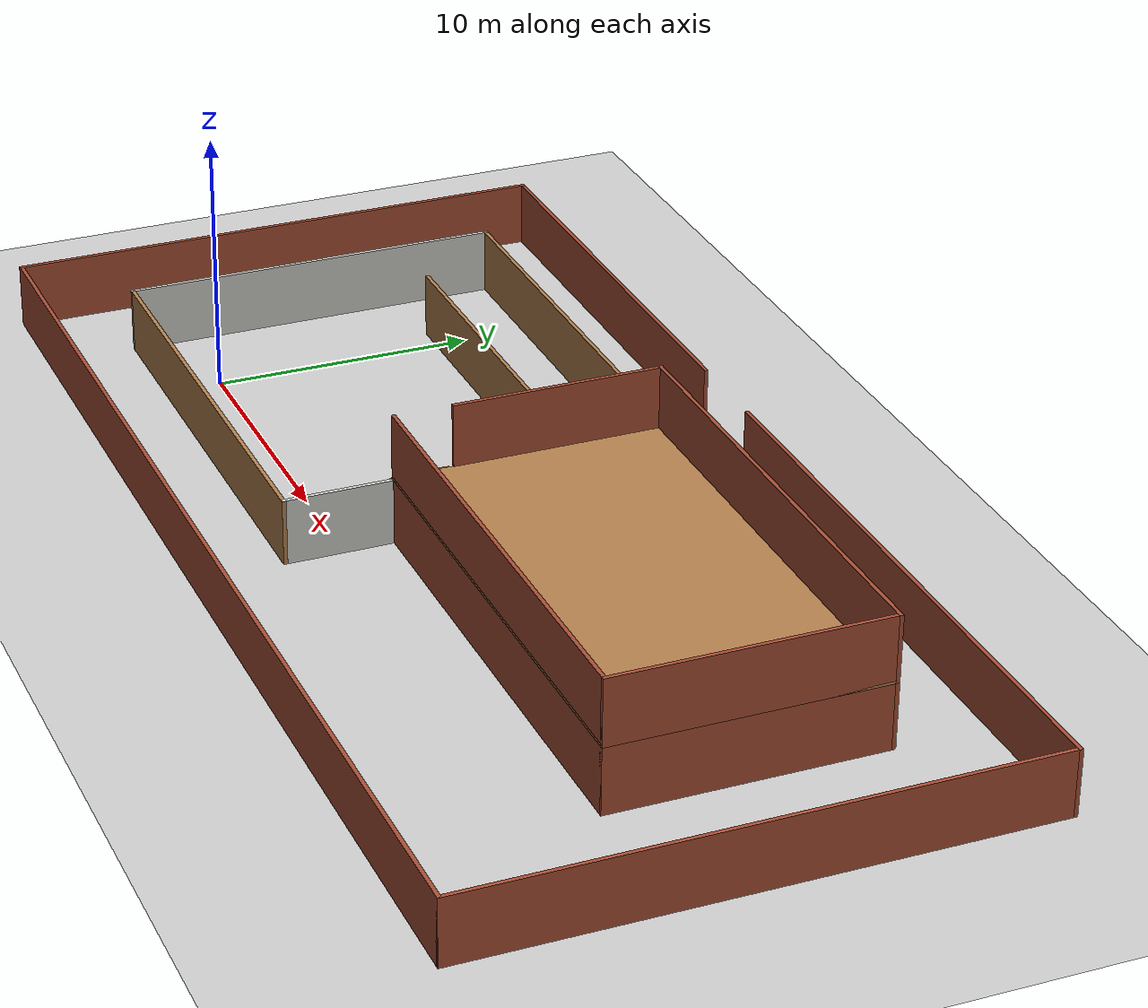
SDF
<?xml version="1.0" ?>
<sdf version="1.7">
  <world name="test_world">
    <include>
      <uri>model://ground_plane</uri>
    </include>

    <include>
      <uri>model://sun</uri>
    </include>

    <include>
      <uri>model://test_world</uri>
      <pose>15.0 5.0 0 0 -0 0</pose>
    </include>
  </world>
</sdf>

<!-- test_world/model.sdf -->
<sdf version='1.7'>
  <model name='test_world'>
    <pose>15.0 5.0 0 0 -0 0</pose>
    <link name='Floor_0'>
      <pose>8.0014 2.02127 2.5 0 -0 0</pose>
      <visual name='Floor_0_Visual_0'>
        <pose>0 -5.06045 0.05 0 -0 0</pose>
        <geometry>
          <box>
            <size>18.5 0.1291 0.1</size>
          </box>
        </geometry>
        <material>
          <script>
            <uri>file://media/materials/scripts/gazebo.material</uri>
            <name>Gazebo/Wood</name>
          </script>
          <ambient>1 1 1 1</ambient>
        </material>
        <meta>
          <layer>1</layer>
        </meta>
      </visual>
      <collision name='Floor_0_Collision_0'>
        <geometry>
          <box>
            <size>18.5 0.1291 0.1</size>
          </box>
        </geometry>
        <pose>0 -5.06045 0.05 0 -0 0</pose>
      </collision>
      <visual name='Floor_0_Visual_1'>
        <pose>0.03965 -4.47833 0.05 0 -0 0</pose>
        <geometry>
          <box>
            <size>18.4207 1.03513 0.1</size>
          </box>
        </geometry>
        <material>
          <script>
            <uri>file://media/materials/scripts/gazebo.material</uri>
            <name>Gazebo/Wood</name>
          </script>
          <ambient>1 1 1 1</ambient>
        </material>
        <meta>
          <layer>1</layer>
        </meta>
      </visual>
      <collision name='Floor_0_Collision_1'>
        <geometry>
          <box>
            <size>18.4207 1.03513 0.1</size>
          </box>
        </geometry>
        <pose>0.03965 -4.47833 0.05 0 -0 0</pose>
      </collision>
      <visual name='Floor_0_Visual_2'>
        <pose>0.048992 0.582117 0.05 0 -0 0</pose>
        <geometry>
          <box>
            <size>18.402 9.08577 0.1</size>
          </box>
        </geometry>
        <material>
          <script>
            <uri>file://media/materials/scripts/gazebo.material</uri>
            <name>Gazebo/Wood</name>
          </script>
          <ambient>1 1 1 1</ambient>
        </material>
        <meta>
          <layer>1</layer>
        </meta>
      </visual>
      <collision name='Floor_0_Collision_2'>
        <geometry>
          <box>
            <size>18.402 9.08577 0.1</size>
          </box>
        </geometry>
        <pose>0.048992 0.582117 0.05 0 -0 0</pose>
      </collision>
    </link>
    <link name='Stairs_0'>
      <visual name='Stairs_0_Visual_0'>
        <pose>-4.55264 -2.47463 0.083333 0 -0 1.5708</pose>
        <geometry>
          <box>
            <size>1 0.233333 0.166667</size>
          </box>
        </geometry>
        <material>
          <script>
            <uri>file://media/materials/scripts/gazebo.material</uri>
            <name>Gazebo/Wood</name>
          </script>
          <ambient>1 1 1 1</ambient>
        </material>
        <meta>
          <layer>0</layer>
        </meta>
      </visual>
      <collision name='Stairs_0_Collision_0'>
        <geometry>
          <box>
            <size>1 0.233333 0.166667</size>
          </box>
        </geometry>
        <pose>-4.55264 -2.47463 0.083333 0 -0 1.5708</pose>
      </collision>
      <visual name='Stairs_0_Visual_1'>
        <pose>-4.3193 -2.47463 0.25 0 -0 1.5708</pose>
        <geometry>
          <box>
            <size>1 0.233333 0.166667</size>
          </box>
        </geometry>
        <material>
          <script>
            <uri>file://media/materials/scripts/gazebo.material</uri>
            <name>Gazebo/Wood</name>
          </script>
          <ambient>1 1 1 1</ambient>
        </material>
        <meta>
          <layer>0</layer>
        </meta>
      </visual>
      <collision name='Stairs_0_Collision_1'>
        <geometry>
          <box>
            <size>1 0.233333 0.166667</size>
          </box>
        </geometry>
        <pose>-4.3193 -2.47463 0.25 0 -0 1.5708</pose>
      </collision>
      <visual name='Stairs_0_Visual_2'>
        <pose>-4.08597 -2.47463 0.416667 0 -0 1.5708</pose>
        <geometry>
          <box>
            <size>1 0.233333 0.166667</size>
          </box>
        </geometry>
        <material>
          <script>
            <uri>file://media/materials/scripts/gazebo.material</uri>
            <name>Gazebo/Wood</name>
          </script>
          <ambient>1 1 1 1</ambient>
        </material>
        <meta>
          <layer>0</layer>
        </meta>
      </visual>
      <collision name='Stairs_0_Collision_2'>
        <geometry>
          <box>
            <size>1 0.233333 0.166667</size>
          </box>
        </geometry>
        <pose>-4.08597 -2.47463 0.416667 0 -0 1.5708</pose>
      </collision>
      <visual name='Stairs_0_Visual_3'>
        <pose>-3.85264 -2.47463 0.583333 0 -0 1.5708</pose>
        <geometry>
          <box>
            <size>1 0.233333 0.166667</size>
          </box>
        </geometry>
        <material>
          <script>
            <uri>file://media/materials/scripts/gazebo.material</uri>
            <name>Gazebo/Wood</name>
          </script>
          <ambient>1 1 1 1</ambient>
        </material>
        <meta>
          <layer>0</layer>
        </meta>
      </visual>
      <collision name='Stairs_0_Collision_3'>
        <geometry>
          <box>
            <size>1 0.233333 0.166667</size>
          </box>
        </geometry>
        <pose>-3.85264 -2.47463 0.583333 0 -0 1.5708</pose>
      </collision>
      <visual name='Stairs_0_Visual_4'>
        <pose>-3.6193 -2.47463 0.75 0 -0 1.5708</pose>
        <geometry>
          <box>
            <size>1 0.233333 0.166667</size>
          </box>
        </geometry>
        <material>
          <script>
            <uri>file://media/materials/scripts/gazebo.material</uri>
            <name>Gazebo/Wood</name>
          </script>
          <ambient>1 1 1 1</ambient>
        </material>
        <meta>
          <layer>0</layer>
        </meta>
      </visual>
      <collision name='Stairs_0_Collision_4'>
        <geometry>
          <box>
            <size>1 0.233333 0.166667</size>
          </box>
        </geometry>
        <pose>-3.6193 -2.47463 0.75 0 -0 1.5708</pose>
      </collision>
      <visual name='Stairs_0_Visual_5'>
        <pose>-3.38597 -2.47463 0.916667 0 -0 1.5708</pose>
        <geometry>
          <box>
            <size>1 0.233333 0.166667</size>
          </box>
        </geometry>
        <material>
          <script>
            <uri>file://media/materials/scripts/gazebo.material</uri>
            <name>Gazebo/Wood</name>
          </script>
          <ambient>1 1 1 1</ambient>
        </material>
        <meta>
          <layer>0</layer>
        </meta>
      </visual>
      <collision name='Stairs_0_Collision_5'>
        <geometry>
          <box>
            <size>1 0.233333 0.166667</size>
          </box>
        </geometry>
        <pose>-3.38597 -2.47463 0.916667 0 -0 1.5708</pose>
      </collision>
      <visual name='Stairs_0_Visual_6'>
        <pose>-3.15264 -2.47463 1.08333 0 -0 1.5708</pose>
        <geometry>
          <box>
            <size>1 0.233333 0.166667</size>
          </box>
        </geometry>
        <material>
          <script>
            <uri>file://media/materials/scripts/gazebo.material</uri>
            <name>Gazebo/Wood</name>
          </script>
          <ambient>1 1 1 1</ambient>
        </material>
        <meta>
          <layer>0</layer>
        </meta>
      </visual>
      <collision name='Stairs_0_Collision_6'>
        <geometry>
          <box>
            <size>1 0.233333 0.166667</size>
          </box>
        </geometry>
        <pose>-3.15264 -2.47463 1.08333 0 -0 1.5708</pose>
      </collision>
      <visual name='Stairs_0_Visual_7'>
        <pose>-2.9193 -2.47463 1.25 0 -0 1.5708</pose>
        <geometry>
          <box>
            <size>1 0.233333 0.166667</size>
          </box>
        </geometry>
        <material>
          <script>
            <uri>file://media/materials/scripts/gazebo.material</uri>
            <name>Gazebo/Wood</name>
          </script>
          <ambient>1 1 1 1</ambient>
        </material>
        <meta>
          <layer>0</layer>
        </meta>
      </visual>
      <collision name='Stairs_0_Collision_7'>
        <geometry>
          <box>
            <size>1 0.233333 0.166667</size>
          </box>
        </geometry>
        <pose>-2.9193 -2.47463 1.25 0 -0 1.5708</pose>
      </collision>
      <visual name='Stairs_0_Visual_8'>
        <pose>-2.68597 -2.47463 1.41667 0 -0 1.5708</pose>
        <geometry>
          <box>
            <size>1 0.233333 0.166667</size>
          </box>
        </geometry>
        <material>
          <script>
            <uri>file://media/materials/scripts/gazebo.material</uri>
            <name>Gazebo/Wood</name>
          </script>
          <ambient>1 1 1 1</ambient>
        </material>
        <meta>
          <layer>0</layer>
        </meta>
      </visual>
      <collision name='Stairs_0_Collision_8'>
        <geometry>
          <box>
            <size>1 0.233333 0.166667</size>
          </box>
        </geometry>
        <pose>-2.68597 -2.47463 1.41667 0 -0 1.5708</pose>
      </collision>
      <visual name='Stairs_0_Visual_9'>
        <pose>-2.45264 -2.47463 1.58333 0 -0 1.5708</pose>
        <geometry>
          <box>
            <size>1 0.233333 0.166667</size>
          </box>
        </geometry>
        <material>
          <script>
            <uri>file://media/materials/scripts/gazebo.material</uri>
            <name>Gazebo/Wood</name>
          </script>
          <ambient>1 1 1 1</ambient>
        </material>
        <meta>
          <layer>0</layer>
        </meta>
      </visual>
      <collision name='Stairs_0_Collision_9'>
        <geometry>
          <box>
            <size>1 0.233333 0.166667</size>
          </box>
        </geometry>
        <pose>-2.45264 -2.47463 1.58333 0 -0 1.5708</pose>
      </collision>
      <visual name='Stairs_0_Visual_10'>
        <pose>-2.2193 -2.47463 1.75 0 -0 1.5708</pose>
        <geometry>
          <box>
            <size>1 0.233333 0.166667</size>
          </box>
        </geometry>
        <material>
          <script>
            <uri>file://media/materials/scripts/gazebo.material</uri>
            <name>Gazebo/Wood</name>
          </script>
          <ambient>1 1 1 1</ambient>
        </material>
        <meta>
          <layer>0</layer>
        </meta>
      </visual>
      <collision name='Stairs_0_Collision_10'>
        <geometry>
          <box>
            <size>1 0.233333 0.166667</size>
          </box>
        </geometry>
        <pose>-2.2193 -2.47463 1.75 0 -0 1.5708</pose>
      </collision>
      <visual name='Stairs_0_Visual_11'>
        <pose>-1.98597 -2.47463 1.91667 0 -0 1.5708</pose>
        <geometry>
          <box>
            <size>1 0.233333 0.166667</size>
          </box>
        </geometry>
        <material>
          <script>
            <uri>file://media/materials/scripts/gazebo.material</uri>
            <name>Gazebo/Wood</name>
          </script>
          <ambient>1 1 1 1</ambient>
        </material>
        <meta>
          <layer>0</layer>
        </meta>
      </visual>
      <collision name='Stairs_0_Collision_11'>
        <geometry>
          <box>
            <size>1 0.233333 0.166667</size>
          </box>
        </geometry>
        <pose>-1.98597 -2.47463 1.91667 0 -0 1.5708</pose>
      </collision>
      <visual name='Stairs_0_Visual_12'>
        <pose>-1.75263 -2.47463 2.08333 0 -0 1.5708</pose>
        <geometry>
          <box>
            <size>1 0.233333 0.166667</size>
          </box>
        </geometry>
        <material>
          <script>
            <uri>file://media/materials/scripts/gazebo.material</uri>
            <name>Gazebo/Wood</name>
          </script>
          <ambient>1 1 1 1</ambient>
        </material>
        <meta>
          <layer>0</layer>
        </meta>
      </visual>
      <collision name='Stairs_0_Collision_12'>
        <geometry>
          <box>
            <size>1 0.233333 0.166667</size>
          </box>
        </geometry>
        <pose>-1.75263 -2.47463 2.08333 0 -0 1.5708</pose>
      </collision>
      <visual name='Stairs_0_Visual_13'>
        <pose>-1.5193 -2.47463 2.25 0 -0 1.5708</pose>
        <geometry>
          <box>
            <size>1 0.233333 0.166667</size>
          </box>
        </geometry>
        <material>
          <script>
            <uri>file://media/materials/scripts/gazebo.material</uri>
            <name>Gazebo/Wood</name>
          </script>
          <ambient>1 1 1 1</ambient>
        </material>
        <meta>
          <layer>0</layer>
        </meta>
      </visual>
      <collision name='Stairs_0_Collision_13'>
        <geometry>
          <box>
            <size>1 0.233333 0.166667</size>
          </box>
        </geometry>
        <pose>-1.5193 -2.47463 2.25 0 -0 1.5708</pose>
      </collision>
      <visual name='Stairs_0_Visual_14'>
        <pose>-1.28597 -2.47463 2.41667 0 -0 1.5708</pose>
        <geometry>
          <box>
            <size>1 0.233333 0.166667</size>
          </box>
        </geometry>
        <material>
          <script>
            <uri>file://media/materials/scripts/gazebo.material</uri>
            <name>Gazebo/Wood</name>
          </script>
          <ambient>1 1 1 1</ambient>
        </material>
        <meta>
          <layer>0</layer>
        </meta>
      </visual>
      <collision name='Stairs_0_Collision_14'>
        <geometry>
          <box>
            <size>1 0.233333 0.166667</size>
          </box>
        </geometry>
        <pose>-1.28597 -2.47463 2.41667 0 -0 1.5708</pose>
      </collision>
    </link>
    <link name='Stairs_1'>
      <visual name='Stairs_1_Visual_0'>
        <pose>-4.55966 -1.43949 0.083333 0 -0 1.5708</pose>
        <geometry>
          <box>
            <size>1 0.235107 0.166667</size>
          </box>
        </geometry>
        <material>
          <script>
            <uri>file://media/materials/scripts/gazebo.material</uri>
            <name>Gazebo/Wood</name>
          </script>
          <ambient>1 1 1 1</ambient>
        </material>
        <meta>
          <layer>0</layer>
        </meta>
      </visual>
      <collision name='Stairs_1_Collision_0'>
        <geometry>
          <box>
            <size>1 0.235107 0.166667</size>
          </box>
        </geometry>
        <pose>-4.55966 -1.43949 0.083333 0 -0 1.5708</pose>
      </collision>
      <visual name='Stairs_1_Visual_1'>
        <pose>-4.32456 -1.43949 0.25 0 -0 1.5708</pose>
        <geometry>
          <box>
            <size>1 0.235107 0.166667</size>
          </box>
        </geometry>
        <material>
          <script>
            <uri>file://media/materials/scripts/gazebo.material</uri>
            <name>Gazebo/Wood</name>
          </script>
          <ambient>1 1 1 1</ambient>
        </material>
        <meta>
          <layer>0</layer>
        </meta>
      </visual>
      <collision name='Stairs_1_Collision_1'>
        <geometry>
          <box>
            <size>1 0.235107 0.166667</size>
          </box>
        </geometry>
        <pose>-4.32456 -1.43949 0.25 0 -0 1.5708</pose>
      </collision>
      <visual name='Stairs_1_Visual_2'>
        <pose>-4.08945 -1.43949 0.416667 0 -0 1.5708</pose>
        <geometry>
          <box>
            <size>1 0.235107 0.166667</size>
          </box>
        </geometry>
        <material>
          <script>
            <uri>file://media/materials/scripts/gazebo.material</uri>
            <name>Gazebo/Wood</name>
          </script>
          <ambient>1 1 1 1</ambient>
        </material>
        <meta>
          <layer>0</layer>
        </meta>
      </visual>
      <collision name='Stairs_1_Collision_2'>
        <geometry>
          <box>
            <size>1 0.235107 0.166667</size>
          </box>
        </geometry>
        <pose>-4.08945 -1.43949 0.416667 0 -0 1.5708</pose>
      </collision>
      <visual name='Stairs_1_Visual_3'>
        <pose>-3.85434 -1.43949 0.583333 0 -0 1.5708</pose>
        <geometry>
          <box>
            <size>1 0.235107 0.166667</size>
          </box>
        </geometry>
        <material>
          <script>
            <uri>file://media/materials/scripts/gazebo.material</uri>
            <name>Gazebo/Wood</name>
          </script>
          <ambient>1 1 1 1</ambient>
        </material>
        <meta>
          <layer>0</layer>
        </meta>
      </visual>
      <collision name='Stairs_1_Collision_3'>
        <geometry>
          <box>
            <size>1 0.235107 0.166667</size>
          </box>
        </geometry>
        <pose>-3.85434 -1.43949 0.583333 0 -0 1.5708</pose>
      </collision>
      <visual name='Stairs_1_Visual_4'>
        <pose>-3.61924 -1.43949 0.75 0 -0 1.5708</pose>
        <geometry>
          <box>
            <size>1 0.235107 0.166667</size>
          </box>
        </geometry>
        <material>
          <script>
            <uri>file://media/materials/scripts/gazebo.material</uri>
            <name>Gazebo/Wood</name>
          </script>
          <ambient>1 1 1 1</ambient>
        </material>
        <meta>
          <layer>0</layer>
        </meta>
      </visual>
      <collision name='Stairs_1_Collision_4'>
        <geometry>
          <box>
            <size>1 0.235107 0.166667</size>
          </box>
        </geometry>
        <pose>-3.61924 -1.43949 0.75 0 -0 1.5708</pose>
      </collision>
      <visual name='Stairs_1_Visual_5'>
        <pose>-3.38413 -1.43949 0.916667 0 -0 1.5708</pose>
        <geometry>
          <box>
            <size>1 0.235107 0.166667</size>
          </box>
        </geometry>
        <material>
          <script>
            <uri>file://media/materials/scripts/gazebo.material</uri>
            <name>Gazebo/Wood</name>
          </script>
          <ambient>1 1 1 1</ambient>
        </material>
        <meta>
          <layer>0</layer>
        </meta>
      </visual>
      <collision name='Stairs_1_Collision_5'>
        <geometry>
          <box>
            <size>1 0.235107 0.166667</size>
          </box>
        </geometry>
        <pose>-3.38413 -1.43949 0.916667 0 -0 1.5708</pose>
      </collision>
      <visual name='Stairs_1_Visual_6'>
        <pose>-3.14902 -1.43949 1.08333 0 -0 1.5708</pose>
        <geometry>
          <box>
            <size>1 0.235107 0.166667</size>
          </box>
        </geometry>
        <material>
          <script>
            <uri>file://media/materials/scripts/gazebo.material</uri>
            <name>Gazebo/Wood</name>
          </script>
          <ambient>1 1 1 1</ambient>
        </material>
        <meta>
          <layer>0</layer>
        </meta>
      </visual>
      <collision name='Stairs_1_Collision_6'>
        <geometry>
          <box>
            <size>1 0.235107 0.166667</size>
          </box>
        </geometry>
        <pose>-3.14902 -1.43949 1.08333 0 -0 1.5708</pose>
      </collision>
      <visual name='Stairs_1_Visual_7'>
        <pose>-2.91392 -1.43949 1.25 0 -0 1.5708</pose>
        <geometry>
          <box>
            <size>1 0.235107 0.166667</size>
          </box>
        </geometry>
        <material>
          <script>
            <uri>file://media/materials/scripts/gazebo.material</uri>
            <name>Gazebo/Wood</name>
          </script>
          <ambient>1 1 1 1</ambient>
        </material>
        <meta>
          <layer>0</layer>
        </meta>
      </visual>
      <collision name='Stairs_1_Collision_7'>
        <geometry>
          <box>
            <size>1 0.235107 0.166667</size>
          </box>
        </geometry>
        <pose>-2.91392 -1.43949 1.25 0 -0 1.5708</pose>
      </collision>
      <visual name='Stairs_1_Visual_8'>
        <pose>-2.67881 -1.43949 1.41667 0 -0 1.5708</pose>
        <geometry>
          <box>
            <size>1 0.235107 0.166667</size>
          </box>
        </geometry>
        <material>
          <script>
            <uri>file://media/materials/scripts/gazebo.material</uri>
            <name>Gazebo/Wood</name>
          </script>
          <ambient>1 1 1 1</ambient>
        </material>
        <meta>
          <layer>0</layer>
        </meta>
      </visual>
      <collision name='Stairs_1_Collision_8'>
        <geometry>
          <box>
            <size>1 0.235107 0.166667</size>
          </box>
        </geometry>
        <pose>-2.67881 -1.43949 1.41667 0 -0 1.5708</pose>
      </collision>
      <visual name='Stairs_1_Visual_9'>
        <pose>-2.44371 -1.43949 1.58333 0 -0 1.5708</pose>
        <geometry>
          <box>
            <size>1 0.235107 0.166667</size>
          </box>
        </geometry>
        <material>
          <script>
            <uri>file://media/materials/scripts/gazebo.material</uri>
            <name>Gazebo/Wood</name>
          </script>
          <ambient>1 1 1 1</ambient>
        </material>
        <meta>
          <layer>0</layer>
        </meta>
      </visual>
      <collision name='Stairs_1_Collision_9'>
        <geometry>
          <box>
            <size>1 0.235107 0.166667</size>
          </box>
        </geometry>
        <pose>-2.44371 -1.43949 1.58333 0 -0 1.5708</pose>
      </collision>
      <visual name='Stairs_1_Visual_10'>
        <pose>-2.2086 -1.43949 1.75 0 -0 1.5708</pose>
        <geometry>
          <box>
            <size>1 0.235107 0.166667</size>
          </box>
        </geometry>
        <material>
          <script>
            <uri>file://media/materials/scripts/gazebo.material</uri>
            <name>Gazebo/Wood</name>
          </script>
          <ambient>1 1 1 1</ambient>
        </material>
        <meta>
          <layer>0</layer>
        </meta>
      </visual>
      <collision name='Stairs_1_Collision_10'>
        <geometry>
          <box>
            <size>1 0.235107 0.166667</size>
          </box>
        </geometry>
        <pose>-2.2086 -1.43949 1.75 0 -0 1.5708</pose>
      </collision>
      <visual name='Stairs_1_Visual_11'>
        <pose>-1.97349 -1.43949 1.91667 0 -0 1.5708</pose>
        <geometry>
          <box>
            <size>1 0.235107 0.166667</size>
          </box>
        </geometry>
        <material>
          <script>
            <uri>file://media/materials/scripts/gazebo.material</uri>
            <name>Gazebo/Wood</name>
          </script>
          <ambient>1 1 1 1</ambient>
        </material>
        <meta>
          <layer>0</layer>
        </meta>
      </visual>
      <collision name='Stairs_1_Collision_11'>
        <geometry>
          <box>
            <size>1 0.235107 0.166667</size>
          </box>
        </geometry>
        <pose>-1.97349 -1.43949 1.91667 0 -0 1.5708</pose>
      </collision>
      <visual name='Stairs_1_Visual_12'>
        <pose>-1.73839 -1.43949 2.08333 0 -0 1.5708</pose>
        <geometry>
          <box>
            <size>1 0.235107 0.166667</size>
          </box>
        </geometry>
        <material>
          <script>
            <uri>file://media/materials/scripts/gazebo.material</uri>
            <name>Gazebo/Wood</name>
          </script>
          <ambient>1 1 1 1</ambient>
        </material>
        <meta>
          <layer>0</layer>
        </meta>
      </visual>
      <collision name='Stairs_1_Collision_12'>
        <geometry>
          <box>
            <size>1 0.235107 0.166667</size>
          </box>
        </geometry>
        <pose>-1.73839 -1.43949 2.08333 0 -0 1.5708</pose>
      </collision>
      <visual name='Stairs_1_Visual_13'>
        <pose>-1.50328 -1.43949 2.25 0 -0 1.5708</pose>
        <geometry>
          <box>
            <size>1 0.235107 0.166667</size>
          </box>
        </geometry>
        <material>
          <script>
            <uri>file://media/materials/scripts/gazebo.material</uri>
            <name>Gazebo/Wood</name>
          </script>
          <ambient>1 1 1 1</ambient>
        </material>
        <meta>
          <layer>0</layer>
        </meta>
      </visual>
      <collision name='Stairs_1_Collision_13'>
        <geometry>
          <box>
            <size>1 0.235107 0.166667</size>
          </box>
        </geometry>
        <pose>-1.50328 -1.43949 2.25 0 -0 1.5708</pose>
      </collision>
      <visual name='Stairs_1_Visual_14'>
        <pose>-1.26817 -1.43949 2.41667 0 -0 1.5708</pose>
        <geometry>
          <box>
            <size>1 0.235107 0.166667</size>
          </box>
        </geometry>
        <material>
          <script>
            <uri>file://media/materials/scripts/gazebo.material</uri>
            <name>Gazebo/Wood</name>
          </script>
          <ambient>1 1 1 1</ambient>
        </material>
        <meta>
          <layer>0</layer>
        </meta>
      </visual>
      <collision name='Stairs_1_Collision_14'>
        <geometry>
          <box>
            <size>1 0.235107 0.166667</size>
          </box>
        </geometry>
        <pose>-1.26817 -1.43949 2.41667 0 -0 1.5708</pose>
      </collision>
    </link>
    <link name='Wall_11'>
      <collision name='Wall_11_Collision'>
        <geometry>
          <box>
            <size>18.5 0.15 2.5</size>
          </box>
        </geometry>
        <pose>0 0 1.25 0 -0 0</pose>
      </collision>
      <visual name='Wall_11_Visual'>
        <pose>0 0 1.25 0 -0 0</pose>
        <geometry>
          <box>
            <size>18.5 0.15 2.5</size>
          </box>
        </geometry>
        <material>
          <script>
            <uri>file://media/materials/scripts/gazebo.material</uri>
            <name>Gazebo/Bricks</name>
          </script>
          <ambient>1 1 1 1</ambient>
        </material>
        <meta>
          <layer>1</layer>
        </meta>
      </visual>
      <pose>8.0014 -3.02873 2.5 0 -0 0</pose>
    </link>
    <link name='Wall_12'>
      <collision name='Wall_12_Collision'>
        <geometry>
          <box>
            <size>10.25 0.15 2.5</size>
          </box>
        </geometry>
        <pose>0 0 1.25 0 -0 0</pose>
      </collision>
      <visual name='Wall_12_Visual'>
        <pose>0 0 1.25 0 -0 0</pose>
        <geometry>
          <box>
            <size>10.25 0.15 2.5</size>
          </box>
        </geometry>
        <material>
          <script>
            <uri>file://media/materials/scripts/gazebo.material</uri>
            <name>Gazebo/Bricks</name>
          </script>
          <ambient>1 1 1 1</ambient>
        </material>
        <meta>
          <layer>1</layer>
        </meta>
      </visual>
      <pose>17.1764 2.02127 2.5 0 -0 1.5708</pose>
    </link>
    <link name='Wall_13'>
      <collision name='Wall_13_Collision'>
        <geometry>
          <box>
            <size>18.5 0.15 2.5</size>
          </box>
        </geometry>
        <pose>0 0 1.25 0 -0 0</pose>
      </collision>
      <visual name='Wall_13_Visual'>
        <pose>0 0 1.25 0 -0 0</pose>
        <geometry>
          <box>
            <size>18.5 0.15 2.5</size>
          </box>
        </geometry>
        <material>
          <script>
            <uri>file://media/materials/scripts/gazebo.material</uri>
            <name>Gazebo/Bricks</name>
          </script>
          <ambient>1 1 1 1</ambient>
        </material>
        <meta>
          <layer>1</layer>
        </meta>
      </visual>
      <pose>8.0014 7.07127 2.5 0 -0 3.14159</pose>
    </link>
    <link name='Wall_15'>
      <collision name='Wall_15_Collision'>
        <geometry>
          <box>
            <size>8 0.15 2.5</size>
          </box>
        </geometry>
        <pose>0 0 1.25 0 -0 0</pose>
      </collision>
      <visual name='Wall_15_Visual'>
        <pose>0 0 1.25 0 -0 0</pose>
        <geometry>
          <box>
            <size>8 0.15 2.5</size>
          </box>
        </geometry>
        <material>
          <script>
            <uri>file://media/materials/scripts/gazebo.material</uri>
            <name>Gazebo/Bricks</name>
          </script>
          <ambient>1 1 1 1</ambient>
        </material>
        <meta>
          <layer>1</layer>
        </meta>
      </visual>
      <pose>-1.1736 3.14627 2.5 0 -0 -1.5708</pose>
    </link>
    <link name='Wall_17'>
      <collision name='Wall_17_Collision'>
        <geometry>
          <box>
            <size>4.25 0.15 2.5</size>
          </box>
        </geometry>
        <pose>0 0 1.25 0 -0 0</pose>
      </collision>
      <visual name='Wall_17_Visual'>
        <pose>0 0 1.25 0 -0 0</pose>
        <geometry>
          <box>
            <size>4.25 0.15 2.5</size>
          </box>
        </geometry>
        <material>
          <script>
            <uri>file://media/materials/scripts/gazebo.material</uri>
            <name>Gazebo/CeilingTiled</name>
          </script>
          <ambient>1 1 1 1</ambient>
        </material>
        <meta>
          <layer>0</layer>
        </meta>
      </visual>
      <pose>-1.1736 -5.07873 0 0 -0 -1.5708</pose>
    </link>
    <link name='Wall_18'>
      <collision name='Wall_18_Collision'>
        <geometry>
          <box>
            <size>18 0.15 2.5</size>
          </box>
        </geometry>
        <pose>0 0 1.25 0 -0 0</pose>
      </collision>
      <visual name='Wall_18_Visual'>
        <pose>0 0 1.25 0 -0 0</pose>
        <geometry>
          <box>
            <size>18 0.15 2.5</size>
          </box>
        </geometry>
        <material>
          <script>
            <uri>file://media/materials/scripts/gazebo.material</uri>
            <name>Gazebo/Wood</name>
          </script>
          <ambient>1 1 1 1</ambient>
        </material>
        <meta>
          <layer>0</layer>
        </meta>
      </visual>
      <pose>-10.0986 -7.12873 0 0 -0 3.14159</pose>
    </link>
    <link name='Wall_19'>
      <collision name='Wall_19_Collision'>
        <geometry>
          <box>
            <size>14.75 0.15 2.5</size>
          </box>
        </geometry>
        <pose>0 0 1.25 0 -0 0</pose>
      </collision>
      <visual name='Wall_19_Visual'>
        <pose>0 0 1.25 0 -0 0</pose>
        <geometry>
          <box>
            <size>14.75 0.15 2.5</size>
          </box>
        </geometry>
        <material>
          <script>
            <uri>file://media/materials/scripts/gazebo.material</uri>
            <name>Gazebo/CeilingTiled</name>
          </script>
          <ambient>1 1 1 1</ambient>
        </material>
        <meta>
          <layer>0</layer>
        </meta>
      </visual>
      <pose>-19.0236 0.171273 0 0 -0 1.5708</pose>
    </link>
    <link name='Wall_20'>
      <collision name='Wall_20_Collision'>
        <geometry>
          <box>
            <size>14.75 0.15 2.5</size>
          </box>
        </geometry>
        <pose>0 0 1.25 0 -0 0</pose>
      </collision>
      <visual name='Wall_20_Visual'>
        <pose>0 0 1.25 0 -0 0</pose>
        <geometry>
          <box>
            <size>14.75 0.15 2.5</size>
          </box>
        </geometry>
        <material>
          <script>
            <uri>file://media/materials/scripts/gazebo.material</uri>
            <name>Gazebo/Wood</name>
          </script>
          <ambient>1 1 1 1</ambient>
        </material>
        <meta>
          <layer>0</layer>
        </meta>
      </visual>
      <pose>-11.7236 7.47127 0 0 -0 0</pose>
    </link>
    <link name='Wall_21'>
      <collision name='Wall_21_Collision'>
        <geometry>
          <box>
            <size>3.75 0.15 2.5</size>
          </box>
        </geometry>
        <pose>0 0 1.25 0 -0 0</pose>
      </collision>
      <visual name='Wall_21_Visual'>
        <pose>0 0 1.25 0 -0 0</pose>
        <geometry>
          <box>
            <size>3.75 0.15 2.5</size>
          </box>
        </geometry>
        <material>
          <script>
            <uri>file://media/materials/scripts/gazebo.material</uri>
            <name>Gazebo/CeilingTiled</name>
          </script>
          <ambient>1 1 1 1</ambient>
        </material>
        <meta>
          <layer>0</layer>
        </meta>
      </visual>
      <pose>-4.4236 5.67127 0 0 -0 -1.5708</pose>
    </link>
    <link name='Wall_22'>
      <collision name='Wall_22_Collision'>
        <geometry>
          <box>
            <size>11.75 0.15 2.5</size>
          </box>
        </geometry>
        <pose>0 0 1.25 0 -0 0</pose>
      </collision>
      <visual name='Wall_22_Visual'>
        <pose>0 0 1.25 0 -0 0</pose>
        <geometry>
          <box>
            <size>11.75 0.15 2.5</size>
          </box>
        </geometry>
        <material>
          <script>
            <uri>file://media/materials/scripts/gazebo.material</uri>
            <name>Gazebo/Wood</name>
          </script>
          <ambient>1 1 1 1</ambient>
        </material>
        <meta>
          <layer>0</layer>
        </meta>
      </visual>
      <pose>-10.2236 3.87127 0 0 -0 3.14159</pose>
    </link>
    <link name='Wall_24'>
      <collision name='Wall_24_Collision'>
        <geometry>
          <box>
            <size>18 0.15 2.5</size>
          </box>
        </geometry>
        <pose>0 0 1.25 0 -0 0</pose>
      </collision>
      <visual name='Wall_24_Visual'>
        <pose>0 0 1.25 0 -0 0</pose>
        <geometry>
          <box>
            <size>18 0.15 2.5</size>
          </box>
        </geometry>
        <material>
          <script>
            <uri>file://media/materials/scripts/gazebo.material</uri>
            <name>Gazebo/Bricks</name>
          </script>
          <ambient>1 1 1 1</ambient>
        </material>
        <meta>
          <layer>0</layer>
        </meta>
      </visual>
      <pose>-13.75 10.55 0 0 -0 3.14159</pose>
    </link>
    <link name='Wall_25'>
      <collision name='Wall_25_Collision'>
        <geometry>
          <box>
            <size>21.25 0.15 2.5</size>
          </box>
        </geometry>
        <pose>0 0 1.25 0 -0 0</pose>
      </collision>
      <visual name='Wall_25_Visual'>
        <pose>0 0 1.25 0 -0 0</pose>
        <geometry>
          <box>
            <size>21.25 0.15 2.5</size>
          </box>
        </geometry>
        <material>
          <script>
            <uri>file://media/materials/scripts/gazebo.material</uri>
            <name>Gazebo/Bricks</name>
          </script>
          <ambient>1 1 1 1</ambient>
        </material>
        <meta>
          <layer>0</layer>
        </meta>
      </visual>
      <pose>-22.675 0 0 0 -0 -1.5708</pose>
    </link>
    <link name='Wall_26'>
      <collision name='Wall_26_Collision'>
        <geometry>
          <box>
            <size>45.5 0.15 2.5</size>
          </box>
        </geometry>
        <pose>0 0 1.25 0 -0 0</pose>
      </collision>
      <visual name='Wall_26_Visual'>
        <pose>0 0 1.25 0 -0 0</pose>
        <geometry>
          <box>
            <size>45.5 0.15 2.5</size>
          </box>
        </geometry>
        <material>
          <script>
            <uri>file://media/materials/scripts/gazebo.material</uri>
            <name>Gazebo/Bricks</name>
          </script>
          <ambient>1 1 1 1</ambient>
        </material>
        <meta>
          <layer>0</layer>
        </meta>
      </visual>
      <pose>-0 -10.55 0 0 -0 0</pose>
    </link>
    <link name='Wall_27'>
      <collision name='Wall_27_Collision'>
        <geometry>
          <box>
            <size>21.25 0.15 2.5</size>
          </box>
        </geometry>
        <pose>0 0 1.25 0 -0 0</pose>
      </collision>
      <visual name='Wall_27_Visual'>
        <pose>0 0 1.25 0 -0 0</pose>
        <geometry>
          <box>
            <size>21.25 0.15 2.5</size>
          </box>
        </geometry>
        <material>
          <script>
            <uri>file://media/materials/scripts/gazebo.material</uri>
            <name>Gazebo/Bricks</name>
          </script>
          <ambient>1 1 1 1</ambient>
        </material>
        <meta>
          <layer>0</layer>
        </meta>
      </visual>
      <pose>22.675 0 0 0 -0 1.5708</pose>
    </link>
    <link name='Wall_28'>
      <collision name='Wall_28_Collision'>
        <geometry>
          <box>
            <size>24 0.15 2.5</size>
          </box>
        </geometry>
        <pose>0 0 1.25 0 -0 0</pose>
      </collision>
      <visual name='Wall_28_Visual'>
        <pose>0 0 1.25 0 -0 0</pose>
        <geometry>
          <box>
            <size>24 0.15 2.5</size>
          </box>
        </geometry>
        <material>
          <script>
            <uri>file://media/materials/scripts/gazebo.material</uri>
            <name>Gazebo/Bricks</name>
          </script>
          <ambient>1 1 1 1</ambient>
        </material>
        <meta>
          <layer>0</layer>
        </meta>
      </visual>
      <pose>10.75 10.55 0 0 -0 3.14159</pose>
    </link>
    <link name='Wall_4'>
      <collision name='Wall_4_Collision'>
        <geometry>
          <box>
            <size>9.75 0.15 2.5</size>
          </box>
        </geometry>
        <pose>0 0 1.25 0 -0 0</pose>
      </collision>
      <visual name='Wall_4_Visual'>
        <pose>0 0 1.25 0 -0 0</pose>
        <geometry>
          <box>
            <size>9.75 0.15 2.5</size>
          </box>
        </geometry>
        <material>
          <script>
            <uri>file://media/materials/scripts/gazebo.material</uri>
            <name>Gazebo/Bricks</name>
          </script>
          <ambient>1 1 1 1</ambient>
        </material>
        <meta>
          <layer>0</layer>
        </meta>
      </visual>
      <pose>-1.1736 1.77127 0 0 -0 -1.5708</pose>
    </link>
    <link name='Wall_5'>
      <collision name='Wall_5_Collision'>
        <geometry>
          <box>
            <size>18.5 0.15 2.5</size>
          </box>
        </geometry>
        <pose>0 0 1.25 0 -0 0</pose>
      </collision>
      <visual name='Wall_5_Visual'>
        <pose>0 0 1.25 0 -0 0</pose>
        <geometry>
          <box>
            <size>18.5 0.15 2.5</size>
          </box>
        </geometry>
        <material>
          <script>
            <uri>file://media/materials/scripts/gazebo.material</uri>
            <name>Gazebo/Bricks</name>
          </script>
          <ambient>1 1 1 1</ambient>
        </material>
        <meta>
          <layer>0</layer>
        </meta>
      </visual>
      <pose>8.0014 -3.02873 0 0 -0 0</pose>
    </link>
    <link name='Wall_6'>
      <collision name='Wall_6_Collision'>
        <geometry>
          <box>
            <size>10.25 0.15 2.5</size>
          </box>
        </geometry>
        <pose>0 0 1.25 0 -0 0</pose>
      </collision>
      <visual name='Wall_6_Visual'>
        <pose>0 0 1.25 0 -0 0</pose>
        <geometry>
          <box>
            <size>10.25 0.15 2.5</size>
          </box>
        </geometry>
        <material>
          <script>
            <uri>file://media/materials/scripts/gazebo.material</uri>
            <name>Gazebo/Bricks</name>
          </script>
          <ambient>1 1 1 1</ambient>
        </material>
        <meta>
          <layer>0</layer>
        </meta>
      </visual>
      <pose>17.1764 2.02127 0 0 -0 1.5708</pose>
    </link>
    <link name='Wall_7'>
      <collision name='Wall_7_Collision'>
        <geometry>
          <box>
            <size>18.5 0.15 2.5</size>
          </box>
        </geometry>
        <pose>0 0 1.25 0 -0 0</pose>
      </collision>
      <visual name='Wall_7_Visual'>
        <pose>0 0 1.25 0 -0 0</pose>
        <geometry>
          <box>
            <size>18.5 0.15 2.5</size>
          </box>
        </geometry>
        <material>
          <script>
            <uri>file://media/materials/scripts/gazebo.material</uri>
            <name>Gazebo/Bricks</name>
          </script>
          <ambient>1 1 1 1</ambient>
        </material>
        <meta>
          <layer>0</layer>
        </meta>
      </visual>
      <pose>8.0014 7.07127 0 0 -0 3.14159</pose>
    </link>
    <link name='Wall_8'>
      <collision name='Wall_8_Collision'>
        <geometry>
          <box>
            <size>1.25 0.15 2.5</size>
          </box>
        </geometry>
        <pose>0 0 1.25 0 -0 0</pose>
      </collision>
      <visual name='Wall_8_Visual'>
        <pose>0 0 1.25 0 -0 0</pose>
        <geometry>
          <box>
            <size>1.25 0.15 2.5</size>
          </box>
        </geometry>
        <material>
          <script>
            <uri>file://media/materials/scripts/gazebo.material</uri>
            <name>Gazebo/Bricks</name>
          </script>
          <ambient>1 1 1 1</ambient>
        </material>
        <meta>
          <layer>0</layer>
        </meta>
      </visual>
      <pose>-1.1736 6.52127 0 0 -0 -1.5708</pose>
    </link>
    <static>1</static>
  </model>
</sdf>
